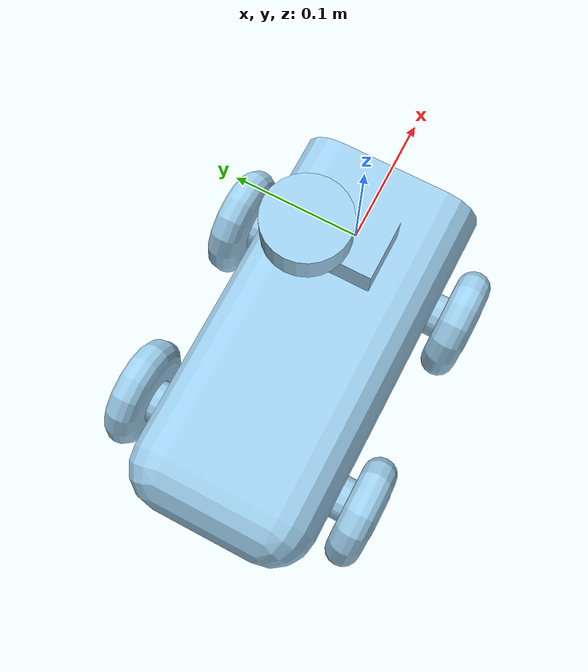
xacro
<?xml version="1.0"?>
<robot xmlns:xacro="http://www.ros.org/wiki/xacro" name="rover">

  <xacro:arg name="use_sim" default="true"/>
  <xacro:arg name="enable_lidar" default="true"/>
  <xacro:arg name="enable_camera" default="false"/>

  <!-- Tune these from the real CAD / world -->
  <xacro:property name="mesh_dir" value="package://rover_description/meshes"/>
  <xacro:property name="wheel_separation" value="0.223"/>
  <xacro:property name="wheel_diameter" value="0.060"/>
  <xacro:property name="body_height_estimate" value="0.215"/>
  <xacro:property name="lidar_z" value="0.185"/>
  <xacro:property name="camera_z" value="0.175"/>

  <material name="body_color">
    <color rgba="0.615686 0.811765 0.929412 1"/>
  </material>

  <link name="base_link"/>

  <link name="main_body">
    <inertial>
      <origin xyz="-0.077841 0.00218182 -0.0645442" rpy="0 0 0"/>
      <mass value="0.00344468"/>
      <inertia
        ixx="8.31262e-06" ixy="1.21351e-08" ixz="-4.30308e-07"
        iyy="2.83262e-05" iyz="7.87963e-09" izz="3.34903e-05"/>
    </inertial>

    <visual>
      <origin xyz="0 0.00232656 -0.028" rpy="0 0 0"/>
      <geometry>
        <mesh filename="${mesh_dir}/59.stl" scale="1 1 1"/>
      </geometry>
      <material name="body_color"/>
    </visual>

    <collision>
      <origin xyz="0 0.00232656 -0.028" rpy="0 0 0"/>
      <geometry>
        <mesh filename="${mesh_dir}/59.stl" scale="1 1 1"/>
      </geometry>
    </collision>
  </link>

  <joint name="base_to_body" type="fixed">
    <parent link="base_link"/>
    <child link="main_body"/>
    <origin xyz="0 0 0" rpy="0 0 0"/>
  </joint>

  <xacro:macro name="wheel" params="name xyz rpy axis inertial_xyz visual_xyz friction:=1.0">
    <link name="${name}">
      <inertial>
        <origin xyz="${inertial_xyz}" rpy="0 0 0"/>
        <mass value="0.000126179"/>
        <inertia
          ixx="1.35094e-07" ixy="0" ixz="4.8002e-11"
          iyy="7.41754e-08" iyz="0" izz="7.43953e-08"/>
      </inertial>

      <visual>
        <origin xyz="${visual_xyz}" rpy="0 0 0"/>
        <geometry>
          <mesh filename="${mesh_dir}/63.stl" scale="1 1 1"/>
        </geometry>
        <material name="body_color"/>
      </visual>

      <collision>
        <origin xyz="${visual_xyz}" rpy="0 0 0"/>
        <geometry>
          <mesh filename="${mesh_dir}/63.stl" scale="1 1 1"/>
        </geometry>
      </collision>
    </link>

    <joint name="${name}_joint" type="continuous">
      <parent link="main_body"/>
      <child link="${name}"/>
      <origin xyz="${xyz}" rpy="${rpy}"/>
      <axis xyz="${axis}"/>
    </joint>

    <gazebo reference="${name}">
      <mu1>${friction}</mu1>
      <mu2>${friction}</mu2>
      <kp>100000.0</kp>
      <kd>1.0</kd>
      <material>Gazebo/Blue</material>
    </gazebo>
  </xacro:macro>

  <!-- y<0 side -->
  <xacro:wheel
    name="right_rear_wheel"
    xyz="-0.165821 -0.109219 -0.0805"
    rpy="0.998696 0 1.5708"
    axis="-1 0 0"
    inertial_xyz="0.0143801 0 -0.00317342"
    visual_xyz="0.001 0 0"/>

  <xacro:wheel
    name="right_front_wheel"
    xyz="0.0 -0.109219 -0.0805"
    rpy="-3.13848 0 1.5708"
    axis="-1 0 0"
    inertial_xyz="0.0143801 0 -0.00317342"
    visual_xyz="0.001 0 0"/>

  <!-- y>0 side -->
  <xacro:wheel
    name="left_front_wheel"
    xyz="0.0 0.113673 -0.0805"
    rpy="0.0299318 0 -1.5708"
    axis="1 0 0"
    inertial_xyz="0.0133801 0 -0.00317342"
    visual_xyz="0 0 0"/>

  <xacro:wheel
    name="left_rear_wheel"
    xyz="-0.165821 0.113673 -0.0805"
    rpy="0.81533 0 -1.5708"
    axis="1 0 0"
    inertial_xyz="0.0133801 0 -0.00317342"
    visual_xyz="0 0 0"/>

  <!-- Lidar -->
  <xacro:if value="$(arg enable_lidar)">
    <link name="lidar_link">
      <inertial>
        <origin xyz="0 0 0" rpy="0 0 0"/>
        <mass value="0.02"/>
        <inertia ixx="1e-4" ixy="0" ixz="0" iyy="1e-4" iyz="0" izz="1e-4"/>
      </inertial>
      <visual>
        <origin xyz="0 0 0" rpy="0 0 0"/>
        <geometry>
          <cylinder radius="0.025" length="0.02"/>
        </geometry>
        <material name="body_color"/>
      </visual>
      <collision>
        <origin xyz="0 0 0" rpy="0 0 0"/>
        <geometry>
          <cylinder radius="0.025" length="0.02"/>
        </geometry>
      </collision>
    </link>

    <joint name="lidar_joint" type="fixed">
      <parent link="base_link"/>
      <child link="lidar_link"/>
      <origin xyz="-0.08 0 ${lidar_z}" rpy="0 0 0"/>
    </joint>
  </xacro:if>

  <!-- Optional camera for the gem task -->
  <xacro:if value="$(arg enable_camera)">
    <link name="camera_link">
      <inertial>
        <origin xyz="0 0 0" rpy="0 0 0"/>
        <mass value="0.02"/>
        <inertia ixx="1e-4" ixy="0" ixz="0" iyy="1e-4" iyz="0" izz="1e-4"/>
      </inertial>
      <visual>
        <geometry>
          <box size="0.03 0.02 0.02"/>
        </geometry>
        <material name="body_color"/>
      </visual>
      <collision>
        <geometry>
          <box size="0.03 0.02 0.02"/>
        </geometry>
      </collision>
    </link>

    <joint name="camera_joint" type="fixed">
      <parent link="base_link"/>
      <child link="camera_link"/>
      <origin xyz="0.04 0 ${camera_z}" rpy="0 0 0"/>
    </joint>
  </xacro:if>

  <xacro:if value="$(arg use_sim)">
    <!-- Diff drive plugin.
         The rear pair is actuated; the front pair behaves as passive rolling wheels. -->
    <gazebo>
      <plugin name="gazebo_ros_diff_drive" filename="libgazebo_ros_diff_drive.so">
        <ros>
          <namespace>/</namespace>
        </ros>
        <update_rate>50</update_rate>

        <left_joint>left_rear_wheel_joint</left_joint>
        <right_joint>right_rear_wheel_joint</right_joint>

        <wheel_separation>${wheel_separation}</wheel_separation>
        <wheel_diameter>${wheel_diameter}</wheel_diameter>

        <max_wheel_torque>5.0</max_wheel_torque>
        <max_wheel_acceleration>2.0</max_wheel_acceleration>

        <command_topic>cmd_vel</command_topic>

        <publish_odom>true</publish_odom>
        <publish_odom_tf>true</publish_odom_tf>
        <publish_wheel_tf>true</publish_wheel_tf>

        <odometry_topic>odom</odometry_topic>
        <odometry_frame>odom</odometry_frame>
        <robot_base_frame>base_link</robot_base_frame>
      </plugin>
    </gazebo>

    <xacro:if value="$(arg enable_lidar)">
      <gazebo reference="lidar_link">
        <sensor name="lidar" type="ray">
          <always_on>true</always_on>
          <visualize>true</visualize>
          <update_rate>10</update_rate>
          <ray>
            <scan>
              <horizontal>
                <samples>360</samples>
                <resolution>1</resolution>
                <min_angle>-3.14159</min_angle>
                <max_angle>3.14159</max_angle>
              </horizontal>
            </scan>
            <range>
              <min>0.05</min>
              <max>5.0</max>
              <resolution>0.01</resolution>
            </range>
          </ray>
          <plugin name="lidar_plugin" filename="libgazebo_ros_ray_sensor.so">
            <ros>
              <remapping>~/out:=scan</remapping>
            </ros>
            <output_type>sensor_msgs/LaserScan</output_type>
            <frame_name>lidar_link</frame_name>
          </plugin>
        </sensor>
      </gazebo>
    </xacro:if>

    <xacro:if value="$(arg enable_camera)">
      <gazebo reference="camera_link">
        <sensor name="camera" type="camera">
          <always_on>true</always_on>
          <update_rate>15</update_rate>
          <camera>
            <horizontal_fov>1.3962634</horizontal_fov>
            <image>
              <width>640</width>
              <height>480</height>
              <format>R8G8B8</format>
            </image>
            <clip>
              <near>0.02</near>
              <far>10.0</far>
            </clip>
          </camera>
          <plugin name="camera_plugin" filename="libgazebo_ros_camera.so">
            <camera_name>front_camera</camera_name>
            <frame_name>camera_link</frame_name>
          </plugin>
        </sensor>
      </gazebo>
    </xacro:if>
  </xacro:if>
</robot>
